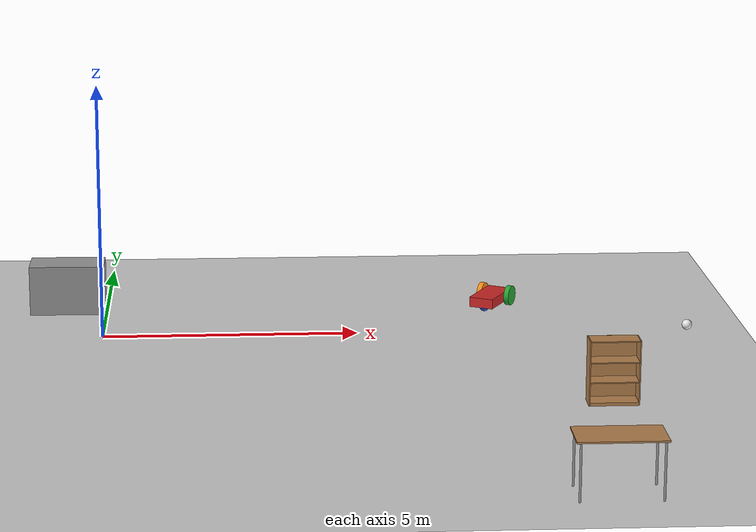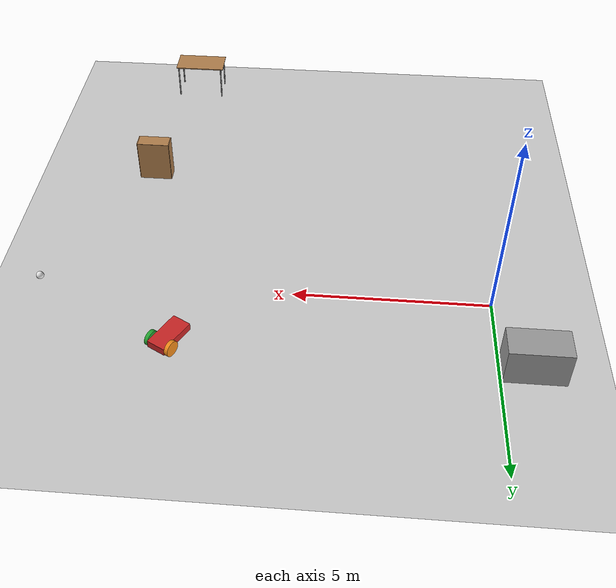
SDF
<sdf version="1.7">
 <world name="default">
  <model name="ground_plane">
   <static>1</static>
   <link name="link">
    <collision name="collision">
     <geometry><plane><normal>0 0 1</normal><size>100 100</size></plane></geometry>
     <surface>
      <contact><collide_bitmask>65535</collide_bitmask></contact>
      <friction><ode><mu>100</mu><mu2>50</mu2></ode></friction>
     </surface>
    </collision>
    <visual name="visual">
     <cast_shadows>0</cast_shadows>
     <geometry><plane><normal>0 0 1</normal><size>100 100</size></plane></geometry>
     <material>
      <script><uri>file://media/materials/scripts/gazebo.material</uri><name>Gazebo/Grey</name></script>
     </material>
    </visual>
   </link>
  </model>
  <model name="wagon_0">
   <link name="chassis">
    <inertial>
     <mass>1</mass>
     <inertia>
      <ixx>0.166667</ixx>
      <ixy>0</ixy>
      <ixz>0</ixz>
      <iyy>0.166667</iyy>
      <iyz>0</iyz>
      <izz>0.166667</izz>
     </inertia>
    </inertial>
    <pose>0.09823 -0.107427 0.483928 0 -0 0</pose>
    <visual name="visual">
     <geometry><box><size>0.5 1 0.2</size></box></geometry>
     <material>
      <lighting>1</lighting>
      <script><uri>file://media/materials/scripts/gazebo.material</uri><name>Gazebo/Red</name></script>
      <shader type="pixel"><normal_map>__default__</normal_map></shader>
      <ambient>1 0 0 1</ambient>
      <diffuse>1 0 0 1</diffuse>
      <specular>0.1 0.1 0.1 1</specular>
      <emissive>0 0 0 1</emissive>
     </material>
    </visual>
    <collision name="collision">
     <geometry><box><size>0.5 1 0.2</size></box></geometry>
     <surface>
      <friction>
       <ode><mu>1</mu><mu2>1</mu2><fdir1>0 0 0</fdir1><slip1>0</slip1><slip2>0</slip2></ode>
       <torsional>
        <coefficient>1</coefficient>
        <patch_radius>0</patch_radius>
        <surface_radius>0</surface_radius>
        <use_patch_radius>1</use_patch_radius>
        <ode><slip>0</slip></ode>
       </torsional>
      </friction>
      <bounce><restitution_coefficient>0</restitution_coefficient><threshold>1e+06</threshold></bounce>
      <contact>
       <collide_without_contact>0</collide_without_contact>
       <collide_without_contact_bitmask>1</collide_without_contact_bitmask>
       <collide_bitmask>1</collide_bitmask>
       <ode>
        <soft_cfm>0</soft_cfm>
        <soft_erp>0.2</soft_erp>
        <kp>1e+13</kp>
        <kd>1</kd>
        <max_vel>0.01</max_vel>
        <min_depth>0</min_depth>
       </ode>
       <bullet>
        <split_impulse>1</split_impulse>
        <split_impulse_penetration_threshold>-0.01</split_impulse_penetration_threshold>
        <soft_cfm>0</soft_cfm>
        <soft_erp>0.2</soft_erp>
        <kp>1e+13</kp>
        <kd>1</kd>
       </bullet>
      </contact>
     </surface>
    </collision>
   </link>
   <link name="caster">
    <inertial>
     <mass>1</mass>
     <inertia><ixx>0.1</ixx><ixy>0</ixy><ixz>0</ixz><iyy>0.1</iyy><iyz>0</iyz><izz>0.1</izz></inertia>
    </inertial>
    <pose>0.07823 0.252573 0.387496 0 -0 0</pose>
    <visual name="visual">
     <geometry><sphere><radius>0.1</radius></sphere></geometry>
     <material>
      <lighting>1</lighting>
      <script><uri>file://media/materials/scripts/gazebo.material</uri><name>Gazebo/Blue</name></script>
      <shader type="pixel"><normal_map>__default__</normal_map></shader>
      <ambient>0 0 1 1</ambient>
      <diffuse>0 0 1 1</diffuse>
      <specular>0.1 0.1 0.1 1</specular>
      <emissive>0 0 0 1</emissive>
     </material>
    </visual>
    <collision name="collision">
     <geometry><sphere><radius>0.1</radius></sphere></geometry>
     <surface>
      <friction>
       <ode><mu>1</mu><mu2>1</mu2><fdir1>0 0 0</fdir1><slip1>0</slip1><slip2>0</slip2></ode>
       <torsional>
        <coefficient>1</coefficient>
        <patch_radius>0</patch_radius>
        <surface_radius>0</surface_radius>
        <use_patch_radius>1</use_patch_radius>
        <ode><slip>0</slip></ode>
       </torsional>
      </friction>
      <bounce><restitution_coefficient>0</restitution_coefficient><threshold>1e+06</threshold></bounce>
      <contact>
       <collide_without_contact>0</collide_without_contact>
       <collide_without_contact_bitmask>1</collide_without_contact_bitmask>
       <collide_bitmask>1</collide_bitmask>
       <ode>
        <soft_cfm>0</soft_cfm>
        <soft_erp>0.2</soft_erp>
        <kp>1e+13</kp>
        <kd>1</kd>
        <max_vel>0.01</max_vel>
        <min_depth>0</min_depth>
       </ode>
       <bullet>
        <split_impulse>1</split_impulse>
        <split_impulse_penetration_threshold>-0.01</split_impulse_penetration_threshold>
        <soft_cfm>0</soft_cfm>
        <soft_erp>0.2</soft_erp>
        <kp>1e+13</kp>
        <kd>1</kd>
       </bullet>
      </contact>
     </surface>
    </collision>
   </link>
   <link name="right_wheel">
    <inertial>
     <mass>1</mass>
     <inertia><ixx>0.145833</ixx><ixy>0</ixy><ixz>0</ixz><iyy>0.145833</iyy><iyz>0</iyz><izz>0.125</izz></inertia>
    </inertial>
    <pose>0.398249 -0.407428 0.483928 0 -0 0</pose>
    <visual name="visual">
     <pose>0 0 0 0 1.5707 0</pose>
     <geometry><cylinder><radius>0.2</radius><length>0.1</length></cylinder></geometry>
     <material>
      <lighting>1</lighting>
      <script><uri>file://media/materials/scripts/gazebo.material</uri><name>Gazebo/Orange</name></script>
      <shader type="pixel"><normal_map>__default__</normal_map></shader>
      <ambient>1 0.509 0.047 1</ambient>
      <diffuse>1 0.509 0.047 1</diffuse>
      <specular>0.5 0.5 0.5 1</specular>
      <emissive>0 0 0 1</emissive>
     </material>
    </visual>
    <collision name="collision">
     <pose>0 0 0 0 1.5707 0</pose>
     <geometry><cylinder><radius>0.2</radius><length>0.1</length></cylinder></geometry>
     <surface>
      <friction>
       <ode><mu>1</mu><mu2>1</mu2><fdir1>0 0 0</fdir1><slip1>0</slip1><slip2>0</slip2></ode>
       <torsional>
        <coefficient>1</coefficient>
        <patch_radius>0</patch_radius>
        <surface_radius>0</surface_radius>
        <use_patch_radius>1</use_patch_radius>
        <ode><slip>0</slip></ode>
       </torsional>
      </friction>
      <bounce><restitution_coefficient>0</restitution_coefficient><threshold>1e+06</threshold></bounce>
      <contact>
       <collide_without_contact>0</collide_without_contact>
       <collide_without_contact_bitmask>1</collide_without_contact_bitmask>
       <collide_bitmask>1</collide_bitmask>
       <ode>
        <soft_cfm>0</soft_cfm>
        <soft_erp>0.2</soft_erp>
        <kp>1e+13</kp>
        <kd>1</kd>
        <max_vel>0.01</max_vel>
        <min_depth>0</min_depth>
       </ode>
       <bullet>
        <split_impulse>1</split_impulse>
        <split_impulse_penetration_threshold>-0.01</split_impulse_penetration_threshold>
        <soft_cfm>0</soft_cfm>
        <soft_erp>0.2</soft_erp>
        <kp>1e+13</kp>
        <kd>1</kd>
       </bullet>
      </contact>
     </surface>
    </collision>
   </link>
   <link name="left_wheel">
    <inertial>
     <mass>1</mass>
     <inertia><ixx>0.145833</ixx><ixy>0</ixy><ixz>0</ixz><iyy>0.145833</iyy><iyz>0</iyz><izz>0.125</izz></inertia>
    </inertial>
    <pose>-0.20179 -0.407428 0.483928 0 -0 0</pose>
    <visual name="visual">
     <pose>0 0 0 0 1.5707 0</pose>
     <geometry><cylinder><radius>0.2</radius><length>0.1</length></cylinder></geometry>
     <material>
      <lighting>1</lighting>
      <script><uri>file://media/materials/scripts/gazebo.material</uri><name>Gazebo/Green</name></script>
      <shader type="pixel"><normal_map>__default__</normal_map></shader>
      <ambient>0 1 0 1</ambient>
      <diffuse>0 1 0 1</diffuse>
      <specular>0.1 0.1 0.1 1</specular>
      <emissive>0 0 0 1</emissive>
     </material>
    </visual>
    <collision name="collision">
     <pose>0 0 0 0 1.5707 0</pose>
     <geometry><cylinder><radius>0.2</radius><length>0.1</length></cylinder></geometry>
     <surface>
      <friction>
       <ode><mu>1</mu><mu2>1</mu2><fdir1>0 0 0</fdir1><slip1>0</slip1><slip2>0</slip2></ode>
       <torsional>
        <coefficient>1</coefficient>
        <patch_radius>0</patch_radius>
        <surface_radius>0</surface_radius>
        <use_patch_radius>1</use_patch_radius>
        <ode><slip>0</slip></ode>
       </torsional>
      </friction>
      <bounce><restitution_coefficient>0</restitution_coefficient><threshold>1e+06</threshold></bounce>
      <contact>
       <collide_without_contact>0</collide_without_contact>
       <collide_without_contact_bitmask>1</collide_without_contact_bitmask>
       <collide_bitmask>1</collide_bitmask>
       <ode>
        <soft_cfm>0</soft_cfm>
        <soft_erp>0.2</soft_erp>
        <kp>1e+13</kp>
        <kd>1</kd>
        <max_vel>0.01</max_vel>
        <min_depth>0</min_depth>
       </ode>
       <bullet>
        <split_impulse>1</split_impulse>
        <split_impulse_penetration_threshold>-0.01</split_impulse_penetration_threshold>
        <soft_cfm>0</soft_cfm>
        <soft_erp>0.2</soft_erp>
        <kp>1e+13</kp>
        <kd>1</kd>
       </bullet>
      </contact>
     </surface>
    </collision>
   </link>
   <joint name="chassis_JOINT_0" type="ball">
    <parent>chassis</parent>
    <child>caster</child>
    <physics>
     <ode><limit><cfm>0</cfm><erp>0.2</erp></limit><suspension><cfm>0</cfm><erp>0.2</erp></suspension></ode>
    </physics>
   </joint>
   <joint name="chassis_JOINT_1" type="revolute">
    <parent>chassis</parent>
    <child>right_wheel</child>
    <axis>
     <xyz>1 0 0</xyz>
     <limit>
      <lower>-1.79769e+308</lower>
      <upper>1.79769e+308</upper>
      <effort>-1</effort>
      <velocity>-1</velocity>
     </limit>
     <dynamics>
      <spring_reference>0</spring_reference>
      <spring_stiffness>0</spring_stiffness>
      <damping>0</damping>
     </dynamics>
    </axis>
    <physics>
     <ode><limit><cfm>0</cfm><erp>0.2</erp></limit><suspension><cfm>0</cfm><erp>0.2</erp></suspension></ode>
    </physics>
   </joint>
   <joint name="chassis_JOINT_2" type="revolute">
    <parent>chassis</parent>
    <child>left_wheel</child>
    <axis>
     <xyz>1 0 0</xyz>
     <limit>
      <lower>-1.79769e+308</lower>
      <upper>1.79769e+308</upper>
      <effort>-1</effort>
      <velocity>-1</velocity>
     </limit>
     <dynamics>
      <spring_reference>0</spring_reference>
      <spring_stiffness>0</spring_stiffness>
      <damping>0</damping>
     </dynamics>
    </axis>
    <physics>
     <ode><limit><cfm>0</cfm><erp>0.2</erp></limit><suspension><cfm>0</cfm><erp>0.2</erp></suspension></ode>
    </physics>
   </joint>
   <static>0</static>
   <pose>7.86392 1.6517 -0.286125 -0.005407 -8e-06 2.63802</pose>
  </model>
  <model name="bookshelf">
   <static>1</static>
   <link name="link">
    <inertial><mass>1</mass></inertial>
    <collision name="back">
     <pose>0 0.005 0.6 0 -0 0</pose>
     <geometry><box><size>0.9 0.01 1.2</size></box></geometry>
    </collision>
    <visual name="visual1">
     <pose>0 0.005 0.6 0 -0 0</pose>
     <geometry><box><size>0.9 0.01 1.2</size></box></geometry>
     <material>
      <script><uri>file://media/materials/scripts/gazebo.material</uri><name>Gazebo/Wood</name></script>
     </material>
    </visual>
    <collision name="left_side">
     <pose>0.45 -0.195 0.6 0 -0 0</pose>
     <geometry><box><size>0.02 0.4 1.2</size></box></geometry>
    </collision>
    <visual name="visual2">
     <pose>0.45 -0.195 0.6 0 -0 0</pose>
     <geometry><box><size>0.02 0.4 1.2</size></box></geometry>
     <material>
      <script><uri>file://media/materials/scripts/gazebo.material</uri><name>Gazebo/Wood</name></script>
     </material>
    </visual>
    <collision name="right_side">
     <pose>-0.45 -0.195 0.6 0 -0 0</pose>
     <geometry><box><size>0.02 0.4 1.2</size></box></geometry>
    </collision>
    <visual name="visual3">
     <pose>-0.45 -0.195 0.6 0 -0 0</pose>
     <geometry><box><size>0.02 0.4 1.2</size></box></geometry>
     <material>
      <script><uri>file://media/materials/scripts/gazebo.material</uri><name>Gazebo/Wood</name></script>
     </material>
    </visual>
    <collision name="bottom">
     <pose>0 -0.195 0.03 0 -0 0</pose>
     <geometry><box><size>0.88 0.4 0.06</size></box></geometry>
    </collision>
    <visual name="visual4">
     <pose>0 -0.195 0.03 0 -0 0</pose>
     <geometry><box><size>0.88 0.4 0.06</size></box></geometry>
     <material>
      <script><uri>file://media/materials/scripts/gazebo.material</uri><name>Gazebo/Wood</name></script>
     </material>
    </visual>
    <collision name="top">
     <pose>0 -0.195 1.19 0 -0 0</pose>
     <geometry><box><size>0.88 0.4 0.02</size></box></geometry>
    </collision>
    <visual name="visual5">
     <pose>0 -0.195 1.19 0 -0 0</pose>
     <geometry><box><size>0.88 0.4 0.02</size></box></geometry>
     <material>
      <script><uri>file://media/materials/scripts/gazebo.material</uri><name>Gazebo/Wood</name></script>
     </material>
    </visual>
    <collision name="low_shelf">
     <pose>0 -0.195 0.43 0 -0 0</pose>
     <geometry><box><size>0.88 0.4 0.02</size></box></geometry>
    </collision>
    <visual name="visual6">
     <pose>0 -0.195 0.43 0 -0 0</pose>
     <geometry><box><size>0.88 0.4 0.02</size></box></geometry>
     <material>
      <script><uri>file://media/materials/scripts/gazebo.material</uri><name>Gazebo/Wood</name></script>
     </material>
    </visual>
    <collision name="high_shelf">
     <pose>0 -0.195 0.8 0 -0 0</pose>
     <geometry><box><size>0.88 0.4 0.02</size></box></geometry>
    </collision>
    <visual name="visual7">
     <pose>0 -0.195 0.8 0 -0 0</pose>
     <geometry><box><size>0.88 0.4 0.02</size></box></geometry>
     <material>
      <script><uri>file://media/materials/scripts/gazebo.material</uri><name>Gazebo/Wood</name></script>
     </material>
    </visual>
   </link>
   <pose>9.3519 -4.45248 0 0 -0 0</pose>
  </model>
  <model name="table_0">
   <static>1</static>
   <link name="link">
    <collision name="surface">
     <pose>0 0 1 0 -0 0</pose>
     <geometry><box><size>1.5 0.8 0.03</size></box></geometry>
     <surface><friction><ode><mu>0.6</mu><mu2>0.6</mu2></ode></friction></surface>
    </collision>
    <visual name="visual1">
     <pose>0 0 1 0 -0 0</pose>
     <geometry><box><size>1.5 0.8 0.03</size></box></geometry>
     <material>
      <script><uri>file://media/materials/scripts/gazebo.material</uri><name>Gazebo/Wood</name></script>
     </material>
    </visual>
    <collision name="front_left_leg">
     <pose>0.68 0.38 0.5 0 -0 0</pose>
     <geometry><cylinder><radius>0.02</radius><length>1</length></cylinder></geometry>
    </collision>
    <visual name="front_left_leg">
     <pose>0.68 0.38 0.5 0 -0 0</pose>
     <geometry><cylinder><radius>0.02</radius><length>1</length></cylinder></geometry>
     <material>
      <script><uri>file://media/materials/scripts/gazebo.material</uri><name>Gazebo/Grey</name></script>
     </material>
    </visual>
    <collision name="front_right_leg">
     <pose>0.68 -0.38 0.5 0 -0 0</pose>
     <geometry><cylinder><radius>0.02</radius><length>1</length></cylinder></geometry>
    </collision>
    <visual name="front_right_leg">
     <pose>0.68 -0.38 0.5 0 -0 0</pose>
     <geometry><cylinder><radius>0.02</radius><length>1</length></cylinder></geometry>
     <material>
      <script><uri>file://media/materials/scripts/gazebo.material</uri><name>Gazebo/Grey</name></script>
     </material>
    </visual>
    <collision name="back_right_leg">
     <pose>-0.68 -0.38 0.5 0 -0 0</pose>
     <geometry><cylinder><radius>0.02</radius><length>1</length></cylinder></geometry>
    </collision>
    <visual name="back_right_leg">
     <pose>-0.68 -0.38 0.5 0 -0 0</pose>
     <geometry><cylinder><radius>0.02</radius><length>1</length></cylinder></geometry>
     <material>
      <script><uri>file://media/materials/scripts/gazebo.material</uri><name>Gazebo/Grey</name></script>
     </material>
    </visual>
    <collision name="back_left_leg">
     <pose>-0.68 0.38 0.5 0 -0 0</pose>
     <geometry><cylinder><radius>0.02</radius><length>1</length></cylinder></geometry>
    </collision>
    <visual name="back_left_leg">
     <pose>-0.68 0.38 0.5 0 -0 0</pose>
     <geometry><cylinder><radius>0.02</radius><length>1</length></cylinder></geometry>
     <material>
      <script><uri>file://media/materials/scripts/gazebo.material</uri><name>Gazebo/Grey</name></script>
     </material>
    </visual>
   </link>
   <pose>8.71232 -9.32715 0 0 -0 0</pose>
  </model>
  <model name="my_ball">
   <link name="link_0">
    <inertial>
     <mass>1</mass>
     <inertia><ixx>0.1</ixx><ixy>0</ixy><ixz>0</ixz><iyy>0.1</iyy><iyz>0</iyz><izz>0.1</izz></inertia>
    </inertial>
    <visual name="visual">
     <geometry><sphere><radius>0.1</radius></sphere></geometry>
     <material>
      <lighting>1</lighting>
      <script><uri>file://media/materials/scripts/gazebo.material</uri><name>Gazebo/White</name></script>
      <shader type="normal_map_tangent_space"><normal_map>__default__</normal_map></shader>
      <ambient>1 1 1 1</ambient>
      <diffuse>1 1 1 1</diffuse>
      <specular>1 1 1 1</specular>
      <emissive>1 1 1 1</emissive>
     </material>
    </visual>
    <collision name="collision">
     <geometry><sphere><radius>0.1</radius></sphere></geometry>
     <surface>
      <friction>
       <ode><mu>1</mu><mu2>1</mu2><fdir1>0 0 0</fdir1><slip1>0</slip1><slip2>0</slip2></ode>
       <torsional>
        <coefficient>1</coefficient>
        <patch_radius>0</patch_radius>
        <surface_radius>0</surface_radius>
        <use_patch_radius>1</use_patch_radius>
        <ode><slip>0</slip></ode>
       </torsional>
      </friction>
      <bounce><restitution_coefficient>0</restitution_coefficient><threshold>1e+06</threshold></bounce>
      <contact>
       <collide_without_contact>0</collide_without_contact>
       <collide_without_contact_bitmask>1</collide_without_contact_bitmask>
       <collide_bitmask>1</collide_bitmask>
       <ode>
        <soft_cfm>0</soft_cfm>
        <soft_erp>0.2</soft_erp>
        <kp>1e+13</kp>
        <kd>1</kd>
        <max_vel>0.01</max_vel>
        <min_depth>0</min_depth>
       </ode>
       <bullet>
        <split_impulse>1</split_impulse>
        <split_impulse_penetration_threshold>-0.01</split_impulse_penetration_threshold>
        <soft_cfm>0</soft_cfm>
        <soft_erp>0.2</soft_erp>
        <kp>1e+13</kp>
        <kd>1</kd>
       </bullet>
      </contact>
     </surface>
    </collision>
   </link>
   <static>0</static>
   <pose>11.5478 -0.076395 0.1 0 -0 0</pose>
  </model>
  <model name="unit_box">
   <link name="link">
    <pose>-1.66635 0.366411 -3e-06 0 -0 0</pose>
    <inertial>
     <mass>1</mass>
     <inertia>
      <ixx>0.166667</ixx>
      <ixy>0</ixy>
      <ixz>0</ixz>
      <iyy>0.166667</iyy>
      <iyz>0</iyz>
      <izz>0.166667</izz>
     </inertia>
    </inertial>
    <visual name="visual">
     <geometry><box><size>1.5 0.8 1</size></box></geometry>
     <material>
      <script><name>Gazebo/Grey</name><uri>file://media/materials/scripts/gazebo.material</uri></script>
      <shader type="pixel"><normal_map>__default__</normal_map></shader>
      <ambient>0.3 0.3 0.3 1</ambient>
      <diffuse>0.7 0.7 0.7 1</diffuse>
      <specular>0.01 0.01 0.01 1</specular>
      <emissive>0 0 0 1</emissive>
     </material>
    </visual>
    <collision name="collision">
     <geometry><box><size>1.5 0.8 1</size></box></geometry>
     <surface>
      <friction>
       <ode><mu>1</mu><mu2>1</mu2><fdir1>0 0 0</fdir1><slip1>0</slip1><slip2>0</slip2></ode>
       <torsional>
        <coefficient>1</coefficient>
        <patch_radius>0</patch_radius>
        <surface_radius>0</surface_radius>
        <use_patch_radius>1</use_patch_radius>
        <ode><slip>0</slip></ode>
       </torsional>
      </friction>
      <bounce><restitution_coefficient>0</restitution_coefficient><threshold>1e+06</threshold></bounce>
      <contact>
       <collide_without_contact>0</collide_without_contact>
       <collide_without_contact_bitmask>1</collide_without_contact_bitmask>
       <collide_bitmask>1</collide_bitmask>
       <ode>
        <soft_cfm>0</soft_cfm>
        <soft_erp>0.2</soft_erp>
        <kp>1e+13</kp>
        <kd>1</kd>
        <max_vel>0.01</max_vel>
        <min_depth>0</min_depth>
       </ode>
       <bullet>
        <split_impulse>1</split_impulse>
        <split_impulse_penetration_threshold>-0.01</split_impulse_penetration_threshold>
        <soft_cfm>0</soft_cfm>
        <soft_erp>0.2</soft_erp>
        <kp>1e+13</kp>
        <kd>1</kd>
       </bullet>
      </contact>
     </surface>
    </collision>
   </link>
   <static>0</static>
   <pose>0.867037 1.64329 0.493625 -0.000137 0.001925 -0.003559</pose>
  </model>
 </world>
</sdf>
